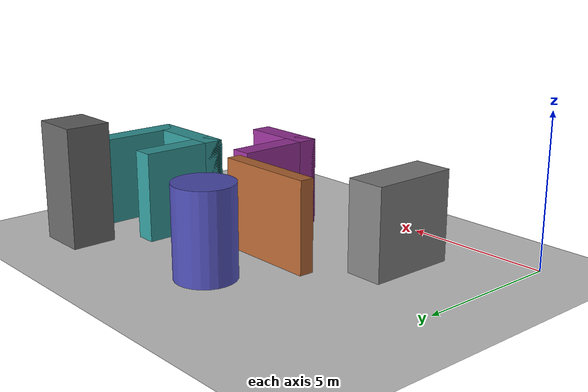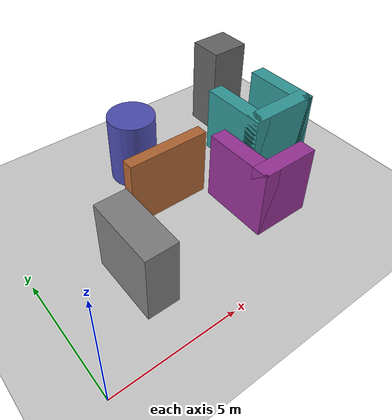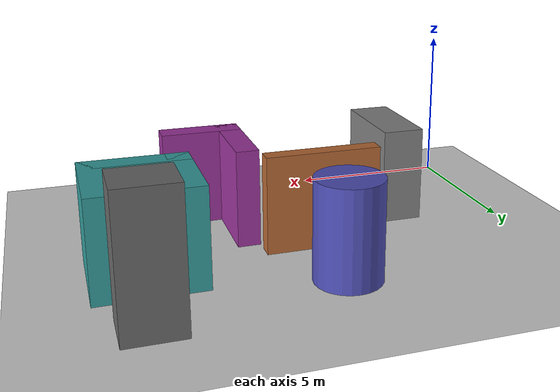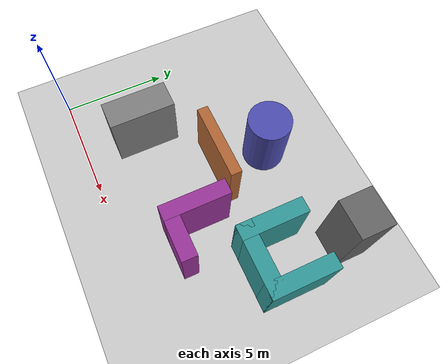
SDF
<?xml version="1.0" encoding="UTF-8"?>
<sdf version="1.9">
  <world name="astar_world">
    <physics type="ode">
      <max_step_size>0.004</max_step_size>
      <real_time_factor>1.0</real_time_factor>
      <real_time_update_rate>250</real_time_update_rate>
    </physics>
    <gravity>0 0 -9.8</gravity>
    <magnetic_field>6e-06 2.3e-05 -4.2e-05</magnetic_field>
    <atmosphere type="adiabatic"/>
    <scene>
      <grid>false</grid>
      <ambient>0.4 0.4 0.4 1</ambient>
      <background>0.7 0.7 0.7 1</background>
      <shadows>true</shadows>
    </scene>
    <model name="ground_plane">
      <static>true</static>
      <link name="link">
        <collision name="collision">
          <geometry>
            <plane>
              <normal>0 0 1</normal>
              <size>1 1</size>
            </plane>
          </geometry>
          <surface>
            <friction>
              <ode/>
            </friction>
            <bounce/>
            <contact/>
          </surface>
        </collision>
        <visual name="visual">
          <geometry>
            <plane>
              <normal>0 0 1</normal>
              <size>500 500</size>
            </plane>
          </geometry>
          <material>
            <ambient>0.8 0.8 0.8 1</ambient>
            <diffuse>0.8 0.8 0.8 1</diffuse>
            <specular>0.8 0.8 0.8 1</specular>
          </material>
        </visual>
        <pose>0 0 0 0 -0 0</pose>
        <inertial>
          <pose>0 0 0 0 -0 0</pose>
          <mass>1</mass>
          <inertia>
            <ixx>1</ixx>
            <ixy>0</ixy>
            <ixz>0</ixz>
            <iyy>1</iyy>
            <iyz>0</iyz>
            <izz>1</izz>
          </inertia>
        </inertial>
        <enable_wind>false</enable_wind>
      </link>
      <pose>0 0 0 0 -0 0</pose>
      <self_collide>false</self_collide>
    </model>
    <light name="sunUTC" type="directional">
      <pose>0 0 500 0 -0 0</pose>
      <cast_shadows>true</cast_shadows>
      <intensity>1</intensity>
      <direction>0.001 0.625 -0.78</direction>
      <diffuse>0.904 0.904 0.904 1</diffuse>
      <specular>0.271 0.271 0.271 1</specular>
      <attenuation>
        <range>2000</range>
        <linear>0</linear>
        <constant>1</constant>
        <quadratic>0</quadratic>
      </attenuation>
      <spot>
        <inner_angle>0</inner_angle>
        <outer_angle>0</outer_angle>
        <falloff>0</falloff>
      </spot>
    </light>
    <spherical_coordinates>
      <surface_model>EARTH_WGS84</surface_model>
      <world_frame_orientation>ENU</world_frame_orientation>
      <latitude_deg>47.397971057728974</latitude_deg>
      <longitude_deg> 8.546163739800146</longitude_deg>
      <elevation>0</elevation>
    </spherical_coordinates>
    <!-- A* 障碍物1：长方体 -->
    <!-- 对应 A*: x=2.5~3.8, y=1.5~4.5 -->
    <model name="astar_obstacle_1">
      <static>true</static>

      <pose>3.15 3.0 1.5 0 0 0</pose>

      <link name="link">

        <collision name="collision">
          <geometry>
            <box>
              <size>1.3 3.0 3.0</size>
            </box>
          </geometry>
        </collision>

        <visual name="visual">
          <geometry>
            <box>
              <size>1.3 3.0 3.0</size>
            </box>
          </geometry>

          <material>
            <ambient>0.5 0.5 0.5 1</ambient>
            <diffuse>0.5 0.5 0.5 1</diffuse>
          </material>
        </visual>

      </link>
    </model>

    <!-- A* 障碍物2：圆柱 -->
    <!-- 中心 (6.3, 8.0)，半径1m -->
    <model name="astar_obstacle_2">

      <static>true</static>

      <pose>6.3 8.0 1.5 0 0 0</pose>

      <link name="link">

        <collision name="collision">
          <geometry>
            <cylinder>
              <radius>1.0</radius>
              <length>3.0</length>
            </cylinder>
          </geometry>
        </collision>

        <visual name="visual">
          <geometry>
            <cylinder>
              <radius>1.0</radius>
              <length>3.0</length>
            </cylinder>
          </geometry>

          <material>
            <ambient>0.3 0.3 0.7 1</ambient>
            <diffuse>0.3 0.3 0.7 1</diffuse>
          </material>
        </visual>

      </link>
    </model>

    <!-- A* 障碍物3：长墙 -->
    <model name="astar_obstacle_3">

      <static>true</static>

      <pose>6.25 5.55 1.5 0 0 0</pose>

      <link name="link">

        <collision name="collision">
          <geometry>
            <box>
              <size>3.5 0.5 3.0</size>
            </box>
          </geometry>
        </collision>

        <visual name="visual">
          <geometry>
            <box>
              <size>3.5 0.5 3.0</size>
            </box>
          </geometry>

          <material>
            <ambient>0.7 0.4 0.2 1</ambient>
            <diffuse>0.7 0.4 0.2 1</diffuse>
          </material>
        </visual>

      </link>
    </model>

    <!-- A* 障碍物4：L形 -->

    <!-- L形竖边 -->
    <model name="astar_obstacle_4_vertical">

      <static>true</static>

      <pose>8.35 3.5 1.5 0 0 0</pose>

      <link name="link">

        <collision name="collision">
          <geometry>
            <box>
              <size>0.7 3.0 3.0</size>
            </box>
          </geometry>
        </collision>

        <visual name="visual">
          <geometry>
            <box>
              <size>0.7 3.0 3.0</size>
            </box>
          </geometry>

          <material>
            <ambient>0.6 0.2 0.6 1</ambient>
            <diffuse>0.6 0.2 0.6 1</diffuse>
          </material>
        </visual>

      </link>
    </model>

    <!-- L形横边 -->
    <model name="astar_obstacle_4_horizontal">

      <static>true</static>

      <pose>9.25 2.35 1.5 0 0 0</pose>

      <link name="link">

        <collision name="collision">
          <geometry>
            <box>
              <size>2.5 0.7 3.0</size>
            </box>
          </geometry>
        </collision>

        <visual name="visual">
          <geometry>
            <box>
              <size>2.5 0.7 3.0</size>
            </box>
          </geometry>

          <material>
            <ambient>0.6 0.2 0.6 1</ambient>
            <diffuse>0.6 0.2 0.6 1</diffuse>
          </material>
        </visual>

      </link>
    </model>

    <!-- A* 障碍物5：U形 -->

    <!-- U左边 -->
    <model name="astar_obstacle_5_left">

      <static>true</static>

      <pose>10.35 6.0 1.5 0 0 0</pose>

      <link name="link">

        <collision name="collision">
          <geometry>
            <box>
              <size>0.7 3.0 3.0</size>
            </box>
          </geometry>
        </collision>

        <visual name="visual">
          <geometry>
            <box>
              <size>0.7 3.0 3.0</size>
            </box>
          </geometry>

          <material>
            <ambient>0.2 0.6 0.6 1</ambient>
            <diffuse>0.2 0.6 0.6 1</diffuse>
          </material>
        </visual>

      </link>
    </model>

    <!-- U右边 -->
    <model name="astar_obstacle_5_right">

      <static>true</static>

      <pose>12.85 6.0 1.5 0 0 0</pose>

      <link name="link">

        <collision name="collision">
          <geometry>
            <box>
              <size>0.7 3.0 3.0</size>
            </box>
          </geometry>
        </collision>

        <visual name="visual">
          <geometry>
            <box>
              <size>0.7 3.0 3.0</size>
            </box>
          </geometry>

          <material>
            <ambient>0.2 0.6 0.6 1</ambient>
            <diffuse>0.2 0.6 0.6 1</diffuse>
          </material>
        </visual>

      </link>
    </model>

    <!-- U底边 -->
    <model name="astar_obstacle_5_bottom">

      <static>true</static>

      <pose>11.6 4.85 1.5 0 0 0</pose>

      <link name="link">

        <collision name="collision">
          <geometry>
            <box>
              <size>3.2 0.7 3.0</size>
            </box>
          </geometry>
        </collision>

        <visual name="visual">
          <geometry>
            <box>
              <size>3.2 0.7 3.0</size>
            </box>
          </geometry>

          <material>
            <ambient>0.2 0.6 0.6 1</ambient>
            <diffuse>0.2 0.6 0.6 1</diffuse>
          </material>
        </visual>

      </link>
    </model>

    <!-- A* 障碍物6：方形建筑 -->
    <model name="astar_obstacle_6">

      <static>true</static>

      <pose>11.85 9.05 2.0 0 0 0</pose>

      <link name="link">

        <collision name="collision">
          <geometry>
            <box>
              <size>1.7 1.5 4.0</size>
            </box>
          </geometry>
        </collision>

        <visual name="visual">
          <geometry>
            <box>
              <size>1.7 1.5 4.0</size>
            </box>
          </geometry>

          <material>
            <ambient>0.4 0.4 0.4 1</ambient>
            <diffuse>0.4 0.4 0.4 1</diffuse>
          </material>
        </visual>

      </link>
    </model>
  </world>
</sdf>
